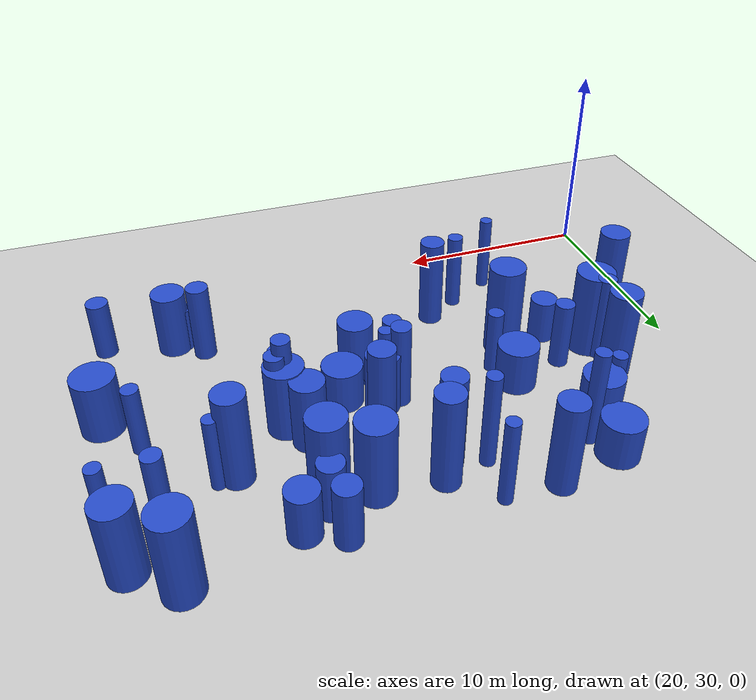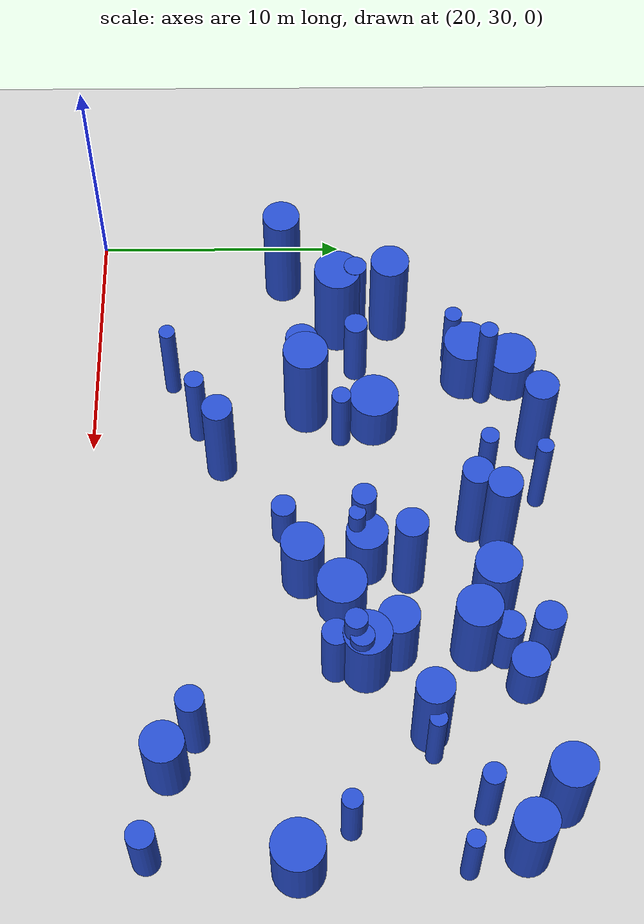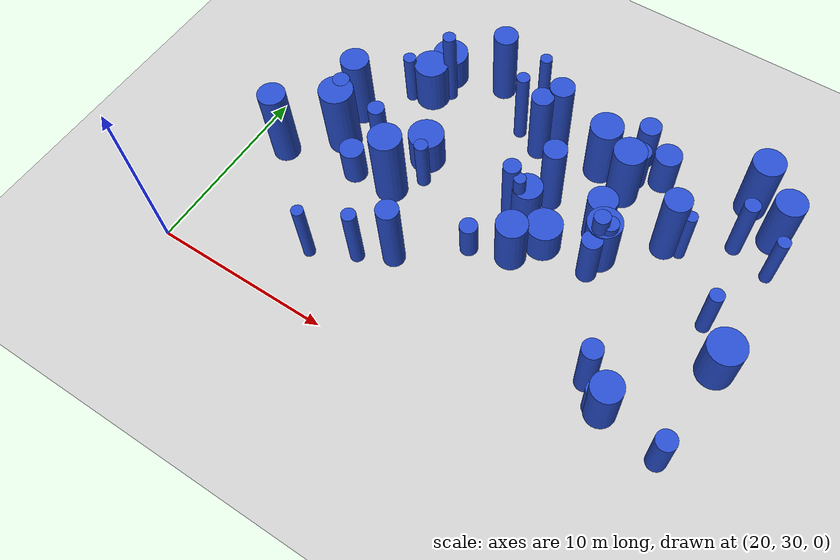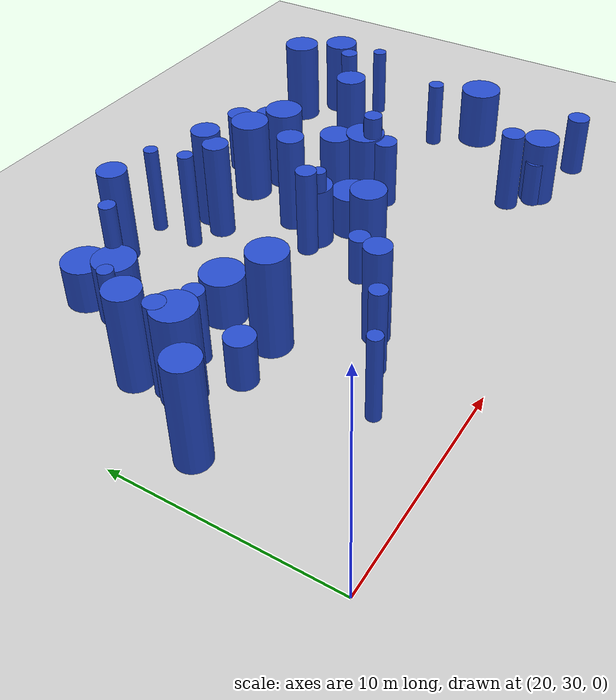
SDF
<sdf version="1.6">
 <world name="default">
  <model name="ground_plane">
   <static>1</static>
   <link name="link">
    <collision name="collision">
     <geometry><plane><normal>0 0 1</normal><size>100 100</size></plane></geometry>
     <surface><friction><ode><mu>100</mu><mu2>50</mu2></ode></friction></surface>
    </collision>
    <visual name="visual">
     <cast_shadows>0</cast_shadows>
     <geometry><plane><normal>0 0 1</normal><size>100 100</size></plane></geometry>
     <material>
      <script><uri>file://media/materials/scripts/gazebo.material</uri><name>Gazebo/Grey</name></script>
     </material>
    </visual>
   </link>
  </model>
  <model name="1">
   <static>0</static>
   <link name="link">
    <inertial>
     <mass>2</mass>
     <inertia><ixx>3.78778</ixx><ixy>0</ixy><ixz>0</ixz><iyy>3.78778</iyy><iyz>0</iyz><izz>0.35692</izz></inertia>
    </inertial>
    <collision name="collision">
     <geometry><cylinder><length>4.65359</length><radius>0.597428</radius></cylinder></geometry>
     <surface><contact><collide_without_contact>1</collide_without_contact></contact></surface>
    </collision>
    <visual name="visual">
     <geometry><cylinder><length>4.65359</length><radius>0.597428</radius></cylinder></geometry>
     <material>
      <script><uri>file://media/materials/scripts/gazebo.material</uri><name>Gazebo/Blue</name></script>
     </material>
    </visual>
    <gravity>0</gravity>
   </link>
   <pose>30.9437 35.2466 2.3268 0 -0 0</pose>
  </model>
  <model name="4">
   <static>0</static>
   <link name="link">
    <inertial>
     <mass>2</mass>
     <inertia>
      <ixx>0.982627</ixx>
      <ixy>0</ixy>
      <ixz>0</ixz>
      <iyy>0.982627</iyy>
      <iyz>0</iyz>
      <izz>0.248096</izz>
     </inertia>
    </inertial>
    <collision name="collision">
     <geometry><cylinder><length>2.26969</length><radius>0.498092</radius></cylinder></geometry>
     <surface><contact><collide_without_contact>1</collide_without_contact></contact></surface>
    </collision>
    <visual name="visual">
     <geometry><cylinder><length>2.26969</length><radius>0.498092</radius></cylinder></geometry>
     <material>
      <script><uri>file://media/materials/scripts/gazebo.material</uri><name>Gazebo/Blue</name></script>
     </material>
    </visual>
    <gravity>0</gravity>
   </link>
   <pose>43.5504 33.5469 1.13484 0 -0 0</pose>
  </model>
  <model name="7">
   <static>0</static>
   <link name="link">
    <inertial>
     <mass>2</mass>
     <inertia><ixx>3.06232</ixx><ixy>0</ixy><ixz>0</ixz><iyy>3.06232</iyy><iyz>0</iyz><izz>0.178257</izz></inertia>
    </inertial>
    <collision name="collision">
     <geometry><cylinder><length>4.22364</length><radius>0.422205</radius></cylinder></geometry>
     <surface><contact><collide_without_contact>1</collide_without_contact></contact></surface>
    </collision>
    <visual name="visual">
     <geometry><cylinder><length>4.22364</length><radius>0.422205</radius></cylinder></geometry>
     <material>
      <script><uri>file://media/materials/scripts/gazebo.material</uri><name>Gazebo/Blue</name></script>
     </material>
    </visual>
    <gravity>0</gravity>
   </link>
   <pose>45.6162 45.1561 2.11182 0 -0 0</pose>
  </model>
  <model name="11">
   <static>0</static>
   <link name="link">
    <inertial>
     <mass>2</mass>
     <inertia><ixx>1.8509</ixx><ixy>0</ixy><ixz>0</ixz><iyy>1.8509</iyy><iyz>0</iyz><izz>0.122377</izz></inertia>
    </inertial>
    <collision name="collision">
     <geometry><cylinder><length>3.27693</length><radius>0.349825</radius></cylinder></geometry>
     <surface><contact><collide_without_contact>1</collide_without_contact></contact></surface>
    </collision>
    <visual name="visual">
     <geometry><cylinder><length>3.27693</length><radius>0.349825</radius></cylinder></geometry>
     <material>
      <script><uri>file://media/materials/scripts/gazebo.material</uri><name>Gazebo/Blue</name></script>
     </material>
    </visual>
    <gravity>0</gravity>
   </link>
   <pose>25.7147 44.6037 1.63846 0 -0 0</pose>
  </model>
  <model name="14">
   <static>0</static>
   <link name="link">
    <inertial>
     <mass>2</mass>
     <inertia><ixx>3.82852</ixx><ixy>0</ixy><ixz>0</ixz><iyy>3.82852</iyy><iyz>0</iyz><izz>0.125875</izz></inertia>
    </inertial>
    <collision name="collision">
     <geometry><cylinder><length>4.75326</length><radius>0.354788</radius></cylinder></geometry>
     <surface><contact><collide_without_contact>1</collide_without_contact></contact></surface>
    </collision>
    <visual name="visual">
     <geometry><cylinder><length>4.75326</length><radius>0.354788</radius></cylinder></geometry>
     <material>
      <script><uri>file://media/materials/scripts/gazebo.material</uri><name>Gazebo/Blue</name></script>
     </material>
    </visual>
    <gravity>0</gravity>
   </link>
   <pose>32.3125 45.6475 2.37663 0 -0 0</pose>
  </model>
  <model name="17">
   <static>0</static>
   <link name="link">
    <inertial>
     <mass>2</mass>
     <inertia><ixx>4.11336</ixx><ixy>0</ixy><ixz>0</ixz><iyy>4.11336</iyy><iyz>0</iyz><izz>0.443854</izz></inertia>
    </inertial>
    <collision name="collision">
     <geometry><cylinder><length>4.83204</length><radius>0.666223</radius></cylinder></geometry>
     <surface><contact><collide_without_contact>1</collide_without_contact></contact></surface>
    </collision>
    <visual name="visual">
     <geometry><cylinder><length>4.83204</length><radius>0.666223</radius></cylinder></geometry>
     <material>
      <script><uri>file://media/materials/scripts/gazebo.material</uri><name>Gazebo/Blue</name></script>
     </material>
    </visual>
    <gravity>0</gravity>
   </link>
   <pose>34.3973 46.1199 2.41602 0 -0 0</pose>
  </model>
  <model name="19">
   <static>0</static>
   <link name="link">
    <inertial>
     <mass>2</mass>
     <inertia><ixx>1.7024</ixx><ixy>0</ixy><ixz>0</ixz><iyy>1.7024</iyy><iyz>0</iyz><izz>0.35835</izz></inertia>
    </inertial>
    <collision name="collision">
     <geometry><cylinder><length>3.02313</length><radius>0.598624</radius></cylinder></geometry>
     <surface><contact><collide_without_contact>1</collide_without_contact></contact></surface>
    </collision>
    <visual name="visual">
     <geometry><cylinder><length>3.02313</length><radius>0.598624</radius></cylinder></geometry>
     <material>
      <script><uri>file://media/materials/scripts/gazebo.material</uri><name>Gazebo/Blue</name></script>
     </material>
    </visual>
    <gravity>0</gravity>
   </link>
   <pose>39.0269 47.6818 1.51157 0 -0 0</pose>
  </model>
  <model name="25">
   <static>0</static>
   <link name="link">
    <inertial>
     <mass>2</mass>
     <inertia><ixx>2.7316</ixx><ixy>0</ixy><ixz>0</ixz><iyy>2.7316</iyy><iyz>0</iyz><izz>0.105322</izz></inertia>
    </inertial>
    <collision name="collision">
     <geometry><cylinder><length>4.00919</length><radius>0.324534</radius></cylinder></geometry>
     <surface><contact><collide_without_contact>1</collide_without_contact></contact></surface>
    </collision>
    <visual name="visual">
     <geometry><cylinder><length>4.00919</length><radius>0.324534</radius></cylinder></geometry>
     <material>
      <script><uri>file://media/materials/scripts/gazebo.material</uri><name>Gazebo/Blue</name></script>
     </material>
    </visual>
    <gravity>0</gravity>
   </link>
   <pose>35.1952 40.577 2.0046 0 -0 0</pose>
  </model>
  <model name="32">
   <static>0</static>
   <link name="link">
    <inertial>
     <mass>2</mass>
     <inertia><ixx>1.31359</ixx><ixy>0</ixy><ixz>0</ixz><iyy>1.31359</iyy><iyz>0</iyz><izz>0.534164</izz></inertia>
    </inertial>
    <collision name="collision">
     <geometry><cylinder><length>2.5058</length><radius>0.730865</radius></cylinder></geometry>
     <surface><contact><collide_without_contact>1</collide_without_contact></contact></surface>
    </collision>
    <visual name="visual">
     <geometry><cylinder><length>2.5058</length><radius>0.730865</radius></cylinder></geometry>
     <material>
      <script><uri>file://media/materials/scripts/gazebo.material</uri><name>Gazebo/Blue</name></script>
     </material>
    </visual>
    <gravity>0</gravity>
   </link>
   <pose>40.5633 46.9048 1.2529 0 -0 0</pose>
  </model>
  <model name="35">
   <static>0</static>
   <link name="link">
    <inertial>
     <mass>2</mass>
     <inertia><ixx>3.99285</ixx><ixy>0</ixy><ixz>0</ixz><iyy>3.99285</iyy><iyz>0</iyz><izz>0.131146</izz></inertia>
    </inertial>
    <collision name="collision">
     <geometry><cylinder><length>4.85424</length><radius>0.36214</radius></cylinder></geometry>
     <surface><contact><collide_without_contact>1</collide_without_contact></contact></surface>
    </collision>
    <visual name="visual">
     <geometry><cylinder><length>4.85424</length><radius>0.36214</radius></cylinder></geometry>
     <material>
      <script><uri>file://media/materials/scripts/gazebo.material</uri><name>Gazebo/Blue</name></script>
     </material>
    </visual>
    <gravity>0</gravity>
   </link>
   <pose>27.5562 45.8459 2.42712 0 -0 0</pose>
  </model>
  <model name="38">
   <static>0</static>
   <link name="link">
    <inertial>
     <mass>2</mass>
     <inertia><ixx>1.64312</ixx><ixy>0</ixy><ixz>0</ixz><iyy>1.64312</iyy><iyz>0</iyz><izz>0.283464</izz></inertia>
    </inertial>
    <collision name="collision">
     <geometry><cylinder><length>3.00139</length><radius>0.532413</radius></cylinder></geometry>
     <surface><contact><collide_without_contact>1</collide_without_contact></contact></surface>
    </collision>
    <visual name="visual">
     <geometry><cylinder><length>3.00139</length><radius>0.532413</radius></cylinder></geometry>
     <material>
      <script><uri>file://media/materials/scripts/gazebo.material</uri><name>Gazebo/Blue</name></script>
     </material>
    </visual>
    <gravity>0</gravity>
   </link>
   <pose>47.3246 32.8651 1.50069 0 -0 0</pose>
  </model>
  <model name="39">
   <static>0</static>
   <link name="link">
    <inertial>
     <mass>2</mass>
     <inertia><ixx>1.87707</ixx><ixy>0</ixy><ixz>0</ixz><iyy>1.87707</iyy><iyz>0</iyz><izz>0.143575</izz></inertia>
    </inertial>
    <collision name="collision">
     <geometry><cylinder><length>3.29115</length><radius>0.378913</radius></cylinder></geometry>
     <surface><contact><collide_without_contact>1</collide_without_contact></contact></surface>
    </collision>
    <visual name="visual">
     <geometry><cylinder><length>3.29115</length><radius>0.378913</radius></cylinder></geometry>
     <material>
      <script><uri>file://media/materials/scripts/gazebo.material</uri><name>Gazebo/Blue</name></script>
     </material>
    </visual>
    <gravity>0</gravity>
   </link>
   <pose>29.5533 40.0496 1.64558 0 -0 0</pose>
  </model>
  <model name="42">
   <static>0</static>
   <link name="link">
    <inertial>
     <mass>2</mass>
     <inertia><ixx>3.1498</ixx><ixy>0</ixy><ixz>0</ixz><iyy>3.1498</iyy><iyz>0</iyz><izz>0.22395</izz></inertia>
    </inertial>
    <collision name="collision">
     <geometry><cylinder><length>4.26931</length><radius>0.473233</radius></cylinder></geometry>
     <surface><contact><collide_without_contact>1</collide_without_contact></contact></surface>
    </collision>
    <visual name="visual">
     <geometry><cylinder><length>4.26931</length><radius>0.473233</radius></cylinder></geometry>
     <material>
      <script><uri>file://media/materials/scripts/gazebo.material</uri><name>Gazebo/Blue</name></script>
     </material>
    </visual>
    <gravity>0</gravity>
   </link>
   <pose>34.5611 40.8487 2.13465 0 -0 0</pose>
  </model>
  <model name="45">
   <static>0</static>
   <link name="link">
    <inertial>
     <mass>2</mass>
     <inertia><ixx>2.26148</ixx><ixy>0</ixy><ixz>0</ixz><iyy>2.26148</iyy><iyz>0</iyz><izz>0.620996</izz></inertia>
    </inertial>
    <collision name="collision">
     <geometry><cylinder><length>3.42138</length><radius>0.788033</radius></cylinder></geometry>
     <surface><contact><collide_without_contact>1</collide_without_contact></contact></surface>
    </collision>
    <visual name="visual">
     <geometry><cylinder><length>3.42138</length><radius>0.788033</radius></cylinder></geometry>
     <material>
      <script><uri>file://media/materials/scripts/gazebo.material</uri><name>Gazebo/Blue</name></script>
     </material>
    </visual>
    <gravity>0</gravity>
   </link>
   <pose>39.1491 42.0776 1.71069 0 -0 0</pose>
  </model>
  <model name="46">
   <static>0</static>
   <link name="link">
    <inertial>
     <mass>2</mass>
     <inertia><ixx>1.08337</ixx><ixy>0</ixy><ixz>0</ixz><iyy>1.08337</iyy><iyz>0</iyz><izz>0.431223</izz></inertia>
    </inertial>
    <collision name="collision">
     <geometry><cylinder><length>2.28179</length><radius>0.656676</radius></cylinder></geometry>
     <surface><contact><collide_without_contact>1</collide_without_contact></contact></surface>
    </collision>
    <visual name="visual">
     <geometry><cylinder><length>2.28179</length><radius>0.656676</radius></cylinder></geometry>
     <material>
      <script><uri>file://media/materials/scripts/gazebo.material</uri><name>Gazebo/Blue</name></script>
     </material>
    </visual>
    <gravity>0</gravity>
   </link>
   <pose>26.1184 38.4737 1.14089 0 -0 0</pose>
  </model>
  <model name="51">
   <static>0</static>
   <link name="link">
    <inertial>
     <mass>2</mass>
     <inertia><ixx>2.12897</ixx><ixy>0</ixy><ixz>0</ixz><iyy>2.12897</iyy><iyz>0</iyz><izz>0.215485</izz></inertia>
    </inertial>
    <collision name="collision">
     <geometry><cylinder><length>3.48244</length><radius>0.464204</radius></cylinder></geometry>
     <surface><contact><collide_without_contact>1</collide_without_contact></contact></surface>
    </collision>
    <visual name="visual">
     <geometry><cylinder><length>3.48244</length><radius>0.464204</radius></cylinder></geometry>
     <material>
      <script><uri>file://media/materials/scripts/gazebo.material</uri><name>Gazebo/Blue</name></script>
     </material>
    </visual>
    <gravity>0</gravity>
   </link>
   <pose>26.2759 40.6636 1.74122 0 -0 0</pose>
  </model>
  <model name="56">
   <static>0</static>
   <link name="link">
    <inertial>
     <mass>2</mass>
     <inertia><ixx>1.44199</ixx><ixy>0</ixy><ixz>0</ixz><iyy>1.44199</iyy><iyz>0</iyz><izz>0.351917</izz></inertia>
    </inertial>
    <collision name="collision">
     <geometry><cylinder><length>2.75612</length><radius>0.593226</radius></cylinder></geometry>
     <surface><contact><collide_without_contact>1</collide_without_contact></contact></surface>
    </collision>
    <visual name="visual">
     <geometry><cylinder><length>2.75612</length><radius>0.593226</radius></cylinder></geometry>
     <material>
      <script><uri>file://media/materials/scripts/gazebo.material</uri><name>Gazebo/Blue</name></script>
     </material>
    </visual>
    <gravity>0</gravity>
   </link>
   <pose>39.2574 46.1786 1.37806 0 -0 0</pose>
  </model>
  <model name="62">
   <static>0</static>
   <link name="link">
    <inertial>
     <mass>2</mass>
     <inertia><ixx>1.99738</ixx><ixy>0</ixy><ixz>0</ixz><iyy>1.99738</iyy><iyz>0</iyz><izz>0.149019</izz></inertia>
    </inertial>
    <collision name="collision">
     <geometry><cylinder><length>3.39665</length><radius>0.38603</radius></cylinder></geometry>
     <surface><contact><collide_without_contact>1</collide_without_contact></contact></surface>
    </collision>
    <visual name="visual">
     <geometry><cylinder><length>3.39665</length><radius>0.38603</radius></cylinder></geometry>
     <material>
      <script><uri>file://media/materials/scripts/gazebo.material</uri><name>Gazebo/Blue</name></script>
     </material>
    </visual>
    <gravity>0</gravity>
   </link>
   <pose>46.2021 40.252 1.69832 0 -0 0</pose>
  </model>
  <model name="64">
   <static>0</static>
   <link name="link">
    <inertial>
     <mass>2</mass>
     <inertia><ixx>3.05171</ixx><ixy>0</ixy><ixz>0</ixz><iyy>3.05171</iyy><iyz>0</iyz><izz>0.774554</izz></inertia>
    </inertial>
    <collision name="collision">
     <geometry><cylinder><length>3.99833</length><radius>0.880087</radius></cylinder></geometry>
     <surface><contact><collide_without_contact>1</collide_without_contact></contact></surface>
    </collision>
    <visual name="visual">
     <geometry><cylinder><length>3.99833</length><radius>0.880087</radius></cylinder></geometry>
     <material>
      <script><uri>file://media/materials/scripts/gazebo.material</uri><name>Gazebo/Blue</name></script>
     </material>
    </visual>
    <gravity>0</gravity>
   </link>
   <pose>39.071 44.9999 1.99916 0 -0 0</pose>
  </model>
  <model name="67">
   <static>0</static>
   <link name="link">
    <inertial>
     <mass>2</mass>
     <inertia><ixx>3.78893</ixx><ixy>0</ixy><ixz>0</ixz><iyy>3.78893</iyy><iyz>0</iyz><izz>0.594463</izz></inertia>
    </inertial>
    <collision name="collision">
     <geometry><cylinder><length>4.57713</length><radius>0.771014</radius></cylinder></geometry>
     <surface><contact><collide_without_contact>1</collide_without_contact></contact></surface>
    </collision>
    <visual name="visual">
     <geometry><cylinder><length>4.57713</length><radius>0.771014</radius></cylinder></geometry>
     <material>
      <script><uri>file://media/materials/scripts/gazebo.material</uri><name>Gazebo/Blue</name></script>
     </material>
    </visual>
    <gravity>0</gravity>
   </link>
   <pose>24.0154 42.051 2.28857 0 -0 0</pose>
  </model>
  <model name="69">
   <static>0</static>
   <link name="link">
    <inertial>
     <mass>2</mass>
     <inertia><ixx>4.29036</ixx><ixy>0</ixy><ixz>0</ixz><iyy>4.29036</iyy><iyz>0</iyz><izz>0.556457</izz></inertia>
    </inertial>
    <collision name="collision">
     <geometry><cylinder><length>4.9064</length><radius>0.74596</radius></cylinder></geometry>
     <surface><contact><collide_without_contact>1</collide_without_contact></contact></surface>
    </collision>
    <visual name="visual">
     <geometry><cylinder><length>4.9064</length><radius>0.74596</radius></cylinder></geometry>
     <material>
      <script><uri>file://media/materials/scripts/gazebo.material</uri><name>Gazebo/Blue</name></script>
     </material>
    </visual>
    <gravity>0</gravity>
   </link>
   <pose>21.9801 37.6707 2.4532 0 -0 0</pose>
  </model>
  <model name="71">
   <static>0</static>
   <link name="link">
    <inertial>
     <mass>2</mass>
     <inertia><ixx>3.39926</ixx><ixy>0</ixy><ixz>0</ixz><iyy>3.39926</iyy><iyz>0</iyz><izz>0.20815</izz></inertia>
    </inertial>
    <collision name="collision">
     <geometry><cylinder><length>4.44647</length><radius>0.456234</radius></cylinder></geometry>
     <surface><contact><collide_without_contact>1</collide_without_contact></contact></surface>
    </collision>
    <visual name="visual">
     <geometry><cylinder><length>4.44647</length><radius>0.456234</radius></cylinder></geometry>
     <material>
      <script><uri>file://media/materials/scripts/gazebo.material</uri><name>Gazebo/Blue</name></script>
     </material>
    </visual>
    <gravity>0</gravity>
   </link>
   <pose>24.1535 40.6533 2.22323 0 -0 0</pose>
  </model>
  <model name="74">
   <static>0</static>
   <link name="link">
    <inertial>
     <mass>2</mass>
     <inertia><ixx>2.79138</ixx><ixy>0</ixy><ixz>0</ixz><iyy>2.79138</iyy><iyz>0</iyz><izz>0.102118</izz></inertia>
    </inertial>
    <collision name="collision">
     <geometry><cylinder><length>4.05487</length><radius>0.319558</radius></cylinder></geometry>
     <surface><contact><collide_without_contact>1</collide_without_contact></contact></surface>
    </collision>
    <visual name="visual">
     <geometry><cylinder><length>4.05487</length><radius>0.319558</radius></cylinder></geometry>
     <material>
      <script><uri>file://media/materials/scripts/gazebo.material</uri><name>Gazebo/Blue</name></script>
     </material>
    </visual>
    <gravity>0</gravity>
   </link>
   <pose>27.024 33.1538 2.02743 0 -0 0</pose>
  </model>
  <model name="80">
   <static>0</static>
   <link name="link">
    <inertial>
     <mass>2</mass>
     <inertia><ixx>3.9002</ixx><ixy>0</ixy><ixz>0</ixz><iyy>3.9002</iyy><iyz>0</iyz><izz>0.386485</izz></inertia>
    </inertial>
    <collision name="collision">
     <geometry><cylinder><length>4.71611</length><radius>0.621679</radius></cylinder></geometry>
     <surface><contact><collide_without_contact>1</collide_without_contact></contact></surface>
    </collision>
    <visual name="visual">
     <geometry><cylinder><length>4.71611</length><radius>0.621679</radius></cylinder></geometry>
     <material>
      <script><uri>file://media/materials/scripts/gazebo.material</uri><name>Gazebo/Blue</name></script>
     </material>
    </visual>
    <gravity>0</gravity>
   </link>
   <pose>36.0171 42.5943 2.35806 0 -0 0</pose>
  </model>
  <model name="82">
   <static>0</static>
   <link name="link">
    <inertial>
     <mass>2</mass>
     <inertia><ixx>3.87551</ixx><ixy>0</ixy><ixz>0</ixz><iyy>3.87551</iyy><iyz>0</iyz><izz>0.350834</izz></inertia>
    </inertial>
    <collision name="collision">
     <geometry><cylinder><length>4.71175</length><radius>0.592312</radius></cylinder></geometry>
     <surface><contact><collide_without_contact>1</collide_without_contact></contact></surface>
    </collision>
    <visual name="visual">
     <geometry><cylinder><length>4.71175</length><radius>0.592312</radius></cylinder></geometry>
     <material>
      <script><uri>file://media/materials/scripts/gazebo.material</uri><name>Gazebo/Blue</name></script>
     </material>
    </visual>
    <gravity>0</gravity>
   </link>
   <pose>33.8019 45.1243 2.35587 0 -0 0</pose>
  </model>
  <model name="84">
   <static>0</static>
   <link name="link">
    <inertial>
     <mass>2</mass>
     <inertia><ixx>1.19616</ixx><ixy>0</ixy><ixz>0</ixz><iyy>1.19616</iyy><iyz>0</iyz><izz>0.933302</izz></inertia>
    </inertial>
    <collision name="collision">
     <geometry><cylinder><length>2.09214</length><radius>0.966076</radius></cylinder></geometry>
     <surface><contact><collide_without_contact>1</collide_without_contact></contact></surface>
    </collision>
    <visual name="visual">
     <geometry><cylinder><length>2.09214</length><radius>0.966076</radius></cylinder></geometry>
     <material>
      <script><uri>file://media/materials/scripts/gazebo.material</uri><name>Gazebo/Blue</name></script>
     </material>
    </visual>
    <gravity>0</gravity>
   </link>
   <pose>37.0807 40.0005 1.04607 0 -0 0</pose>
  </model>
  <model name="86">
   <static>0</static>
   <link name="link">
    <inertial>
     <mass>2</mass>
     <inertia><ixx>3.85061</ixx><ixy>0</ixy><ixz>0</ixz><iyy>3.85061</iyy><iyz>0</iyz><izz>0.518978</izz></inertia>
    </inertial>
    <collision name="collision">
     <geometry><cylinder><length>4.64185</length><radius>0.720401</radius></cylinder></geometry>
     <surface><contact><collide_without_contact>1</collide_without_contact></contact></surface>
    </collision>
    <visual name="visual">
     <geometry><cylinder><length>4.64185</length><radius>0.720401</radius></cylinder></geometry>
     <material>
      <script><uri>file://media/materials/scripts/gazebo.material</uri><name>Gazebo/Blue</name></script>
     </material>
    </visual>
    <gravity>0</gravity>
   </link>
   <pose>42.5024 43.2263 2.32092 0 -0 0</pose>
  </model>
  <model name="87">
   <static>0</static>
   <link name="link">
    <inertial>
     <mass>2</mass>
     <inertia><ixx>3.09626</ixx><ixy>0</ixy><ixz>0</ixz><iyy>3.09626</iyy><iyz>0</iyz><izz>0.107735</izz></inertia>
    </inertial>
    <collision name="collision">
     <geometry><cylinder><length>4.27251</length><radius>0.32823</radius></cylinder></geometry>
     <surface><contact><collide_without_contact>1</collide_without_contact></contact></surface>
    </collision>
    <visual name="visual">
     <geometry><cylinder><length>4.27251</length><radius>0.32823</radius></cylinder></geometry>
     <material>
      <script><uri>file://media/materials/scripts/gazebo.material</uri><name>Gazebo/Blue</name></script>
     </material>
    </visual>
    <gravity>0</gravity>
   </link>
   <pose>32.4923 47.7909 2.13626 0 -0 0</pose>
  </model>
  <model name="89">
   <static>0</static>
   <link name="link">
    <inertial>
     <mass>2</mass>
     <inertia><ixx>2.83176</ixx><ixy>0</ixy><ixz>0</ixz><iyy>2.83176</iyy><iyz>0</iyz><izz>0.149114</izz></inertia>
    </inertial>
    <collision name="collision">
     <geometry><cylinder><length>4.06733</length><radius>0.386152</radius></cylinder></geometry>
     <surface><contact><collide_without_contact>1</collide_without_contact></contact></surface>
    </collision>
    <visual name="visual">
     <geometry><cylinder><length>4.06733</length><radius>0.386152</radius></cylinder></geometry>
     <material>
      <script><uri>file://media/materials/scripts/gazebo.material</uri><name>Gazebo/Blue</name></script>
     </material>
    </visual>
    <gravity>0</gravity>
   </link>
   <pose>29.2793 34.287 2.03367 0 -0 0</pose>
  </model>
  <model name="95">
   <static>0</static>
   <link name="link">
    <inertial>
     <mass>2</mass>
     <inertia>
      <ixx>0.985771</ixx>
      <ixy>0</ixy>
      <ixz>0</ixz>
      <iyy>0.985771</iyy>
      <iyz>0</iyz>
      <izz>0.233893</izz>
     </inertia>
    </inertial>
    <collision name="collision">
     <geometry><cylinder><length>2.28319</length><radius>0.483625</radius></cylinder></geometry>
     <surface><contact><collide_without_contact>1</collide_without_contact></contact></surface>
    </collision>
    <visual name="visual">
     <geometry><cylinder><length>2.28319</length><radius>0.483625</radius></cylinder></geometry>
     <material>
      <script><uri>file://media/materials/scripts/gazebo.material</uri><name>Gazebo/Blue</name></script>
     </material>
    </visual>
    <gravity>0</gravity>
   </link>
   <pose>33.9366 37.7681 1.14159 0 -0 0</pose>
  </model>
  <model name="106">
   <static>0</static>
   <link name="link">
    <inertial>
     <mass>2</mass>
     <inertia><ixx>2.19954</ixx><ixy>0</ixy><ixz>0</ixz><iyy>2.19954</iyy><iyz>0</iyz><izz>0.11993</izz></inertia>
    </inertial>
    <collision name="collision">
     <geometry><cylinder><length>3.58294</length><radius>0.346309</radius></cylinder></geometry>
     <surface><contact><collide_without_contact>1</collide_without_contact></contact></surface>
    </collision>
    <visual name="visual">
     <geometry><cylinder><length>3.58294</length><radius>0.346309</radius></cylinder></geometry>
     <material>
      <script><uri>file://media/materials/scripts/gazebo.material</uri><name>Gazebo/Blue</name></script>
     </material>
    </visual>
    <gravity>0</gravity>
   </link>
   <pose>47.7338 44.4726 1.79147 0 -0 0</pose>
  </model>
  <model name="110">
   <static>0</static>
   <link name="link">
    <inertial>
     <mass>2</mass>
     <inertia><ixx>2.75029</ixx><ixy>0</ixy><ixz>0</ixz><iyy>2.75029</iyy><iyz>0</iyz><izz>0.287407</izz></inertia>
    </inertial>
    <collision name="collision">
     <geometry><cylinder><length>3.95468</length><radius>0.536104</radius></cylinder></geometry>
     <surface><contact><collide_without_contact>1</collide_without_contact></contact></surface>
    </collision>
    <visual name="visual">
     <geometry><cylinder><length>3.95468</length><radius>0.536104</radius></cylinder></geometry>
     <material>
      <script><uri>file://media/materials/scripts/gazebo.material</uri><name>Gazebo/Blue</name></script>
     </material>
    </visual>
    <gravity>0</gravity>
   </link>
   <pose>42.6495 34.504 1.97734 0 -0 0</pose>
  </model>
  <model name="114">
   <static>0</static>
   <link name="link">
    <inertial>
     <mass>2</mass>
     <inertia><ixx>2.29436</ixx><ixy>0</ixy><ixz>0</ixz><iyy>2.29436</iyy><iyz>0</iyz><izz>0.108501</izz></inertia>
    </inertial>
    <collision name="collision">
     <geometry><cylinder><length>3.66615</length><radius>0.329394</radius></cylinder></geometry>
     <surface><contact><collide_without_contact>1</collide_without_contact></contact></surface>
    </collision>
    <visual name="visual">
     <geometry><cylinder><length>3.66615</length><radius>0.329394</radius></cylinder></geometry>
     <material>
      <script><uri>file://media/materials/scripts/gazebo.material</uri><name>Gazebo/Blue</name></script>
     </material>
    </visual>
    <gravity>0</gravity>
   </link>
   <pose>43.338 43.3503 1.83308 0 -0 0</pose>
  </model>
  <model name="128">
   <static>0</static>
   <link name="link">
    <inertial>
     <mass>2</mass>
     <inertia><ixx>3.56373</ixx><ixy>0</ixy><ixz>0</ixz><iyy>3.56373</iyy><iyz>0</iyz><izz>0.183806</izz></inertia>
    </inertial>
    <collision name="collision">
     <geometry><cylinder><length>4.56409</length><radius>0.428726</radius></cylinder></geometry>
     <surface><contact><collide_without_contact>1</collide_without_contact></contact></surface>
    </collision>
    <visual name="visual">
     <geometry><cylinder><length>4.56409</length><radius>0.428726</radius></cylinder></geometry>
     <material>
      <script><uri>file://media/materials/scripts/gazebo.material</uri><name>Gazebo/Blue</name></script>
     </material>
    </visual>
    <gravity>0</gravity>
   </link>
   <pose>39.8452 40.467 2.28205 0 -0 0</pose>
  </model>
  <model name="130">
   <static>0</static>
   <link name="link">
    <inertial>
     <mass>2</mass>
     <inertia><ixx>2.81294</ixx><ixy>0</ixy><ixz>0</ixz><iyy>2.81294</iyy><iyz>0</iyz><izz>0.682512</izz></inertia>
    </inertial>
    <collision name="collision">
     <geometry><cylinder><length>3.85099</length><radius>0.826143</radius></cylinder></geometry>
     <surface><contact><collide_without_contact>1</collide_without_contact></contact></surface>
    </collision>
    <visual name="visual">
     <geometry><cylinder><length>3.85099</length><radius>0.826143</radius></cylinder></geometry>
     <material>
      <script><uri>file://media/materials/scripts/gazebo.material</uri><name>Gazebo/Blue</name></script>
     </material>
    </visual>
    <gravity>0</gravity>
   </link>
   <pose>47.1678 46.577 1.92549 0 -0 0</pose>
  </model>
  <model name="141">
   <static>0</static>
   <link name="link">
    <inertial>
     <mass>2</mass>
     <inertia><ixx>3.32043</ixx><ixy>0</ixy><ixz>0</ixz><iyy>3.32043</iyy><iyz>0</iyz><izz>0.743493</izz></inertia>
    </inertial>
    <collision name="collision">
     <geometry><cylinder><length>4.2062</length><radius>0.86226</radius></cylinder></geometry>
     <surface><contact><collide_without_contact>1</collide_without_contact></contact></surface>
    </collision>
    <visual name="visual">
     <geometry><cylinder><length>4.2062</length><radius>0.86226</radius></cylinder></geometry>
     <material>
      <script><uri>file://media/materials/scripts/gazebo.material</uri><name>Gazebo/Blue</name></script>
     </material>
    </visual>
    <gravity>0</gravity>
   </link>
   <pose>45.3041 47.9549 2.1031 0 -0 0</pose>
  </model>
  <model name="152">
   <static>0</static>
   <link name="link">
    <inertial>
     <mass>2</mass>
     <inertia><ixx>1.20059</ixx><ixy>0</ixy><ixz>0</ixz><iyy>1.20059</iyy><iyz>0</iyz><izz>0.971857</izz></inertia>
    </inertial>
    <collision name="collision">
     <geometry><cylinder><length>2.07074</length><radius>0.985828</radius></cylinder></geometry>
     <surface><contact><collide_without_contact>1</collide_without_contact></contact></surface>
    </collision>
    <visual name="visual">
     <geometry><cylinder><length>2.07074</length><radius>0.985828</radius></cylinder></geometry>
     <material>
      <script><uri>file://media/materials/scripts/gazebo.material</uri><name>Gazebo/Blue</name></script>
     </material>
    </visual>
    <gravity>0</gravity>
   </link>
   <pose>26.8155 47.0067 1.03537 0 -0 0</pose>
  </model>
  <model name="155">
   <static>0</static>
   <link name="link">
    <inertial>
     <mass>2</mass>
     <inertia><ixx>2.14576</ixx><ixy>0</ixy><ixz>0</ixz><iyy>2.14576</iyy><iyz>0</iyz><izz>0.670483</izz></inertia>
    </inertial>
    <collision name="collision">
     <geometry><cylinder><length>3.29592</length><radius>0.81883</radius></cylinder></geometry>
     <surface><contact><collide_without_contact>1</collide_without_contact></contact></surface>
    </collision>
    <visual name="visual">
     <geometry><cylinder><length>3.29592</length><radius>0.81883</radius></cylinder></geometry>
     <material>
      <script><uri>file://media/materials/scripts/gazebo.material</uri><name>Gazebo/Blue</name></script>
     </material>
    </visual>
    <gravity>0</gravity>
   </link>
   <pose>44.0083 33.5307 1.64796 0 -0 0</pose>
  </model>
  <model name="160">
   <static>0</static>
   <link name="link">
    <inertial>
     <mass>2</mass>
     <inertia><ixx>2.44797</ixx><ixy>0</ixy><ixz>0</ixz><iyy>2.44797</iyy><iyz>0</iyz><izz>0.847195</izz></inertia>
    </inertial>
    <collision name="collision">
     <geometry><cylinder><length>3.48514</length><radius>0.920432</radius></cylinder></geometry>
     <surface><contact><collide_without_contact>1</collide_without_contact></contact></surface>
    </collision>
    <visual name="visual">
     <geometry><cylinder><length>3.48514</length><radius>0.920432</radius></cylinder></geometry>
     <material>
      <script><uri>file://media/materials/scripts/gazebo.material</uri><name>Gazebo/Blue</name></script>
     </material>
    </visual>
    <gravity>0</gravity>
   </link>
   <pose>39.8909 40.9021 1.74257 0 -0 0</pose>
  </model>
  <model name="163">
   <static>0</static>
   <link name="link">
    <inertial>
     <mass>2</mass>
     <inertia><ixx>4.16915</ixx><ixy>0</ixy><ixz>0</ixz><iyy>4.16915</iyy><iyz>0</iyz><izz>0.775676</izz></inertia>
    </inertial>
    <collision name="collision">
     <geometry><cylinder><length>4.76318</length><radius>0.880725</radius></cylinder></geometry>
     <surface><contact><collide_without_contact>1</collide_without_contact></contact></surface>
    </collision>
    <visual name="visual">
     <geometry><cylinder><length>4.76318</length><radius>0.880725</radius></cylinder></geometry>
     <material>
      <script><uri>file://media/materials/scripts/gazebo.material</uri><name>Gazebo/Blue</name></script>
     </material>
    </visual>
    <gravity>0</gravity>
   </link>
   <pose>28.4074 38.6486 2.38159 0 -0 0</pose>
  </model>
  <model name="164">
   <static>0</static>
   <link name="link">
    <inertial>
     <mass>2</mass>
     <inertia><ixx>1.85473</ixx><ixy>0</ixy><ixz>0</ixz><iyy>1.85473</iyy><iyz>0</iyz><izz>0.892902</izz></inertia>
    </inertial>
    <collision name="collision">
     <geometry><cylinder><length>2.90684</length><radius>0.944935</radius></cylinder></geometry>
     <surface><contact><collide_without_contact>1</collide_without_contact></contact></surface>
    </collision>
    <visual name="visual">
     <geometry><cylinder><length>2.90684</length><radius>0.944935</radius></cylinder></geometry>
     <material>
      <script><uri>file://media/materials/scripts/gazebo.material</uri><name>Gazebo/Blue</name></script>
     </material>
    </visual>
    <gravity>0</gravity>
   </link>
   <pose>26.7698 45.1486 1.45342 0 -0 0</pose>
  </model>
  <model name="167">
   <static>0</static>
   <link name="link">
    <inertial>
     <mass>2</mass>
     <inertia><ixx>1.34492</ixx><ixy>0</ixy><ixz>0</ixz><iyy>1.34492</iyy><iyz>0</iyz><izz>0.970128</izz></inertia>
    </inertial>
    <collision name="collision">
     <geometry><cylinder><length>2.27138</length><radius>0.984951</radius></cylinder></geometry>
     <surface><contact><collide_without_contact>1</collide_without_contact></contact></surface>
    </collision>
    <visual name="visual">
     <geometry><cylinder><length>2.27138</length><radius>0.984951</radius></cylinder></geometry>
     <material>
      <script><uri>file://media/materials/scripts/gazebo.material</uri><name>Gazebo/Blue</name></script>
     </material>
    </visual>
    <gravity>0</gravity>
   </link>
   <pose>28.9333 41.3694 1.13569 0 -0 0</pose>
  </model>
  <model name="188">
   <static>0</static>
   <link name="link">
    <inertial>
     <mass>2</mass>
     <inertia><ixx>3.04092</ixx><ixy>0</ixy><ixz>0</ixz><iyy>3.04092</iyy><iyz>0</iyz><izz>0.786002</izz></inertia>
    </inertial>
    <collision name="collision">
     <geometry><cylinder><length>3.98592</length><radius>0.886567</radius></cylinder></geometry>
     <surface><contact><collide_without_contact>1</collide_without_contact></contact></surface>
    </collision>
    <visual name="visual">
     <geometry><cylinder><length>3.98592</length><radius>0.886567</radius></cylinder></geometry>
     <material>
      <script><uri>file://media/materials/scripts/gazebo.material</uri><name>Gazebo/Blue</name></script>
     </material>
    </visual>
    <gravity>0</gravity>
   </link>
   <pose>37.3091 45.7782 1.99296 0 -0 0</pose>
  </model>
  <model name="189">
   <static>0</static>
   <link name="link">
    <inertial>
     <mass>2</mass>
     <inertia><ixx>2.71953</ixx><ixy>0</ixy><ixz>0</ixz><iyy>2.71953</iyy><iyz>0</iyz><izz>0.207124</izz></inertia>
    </inertial>
    <collision name="collision">
     <geometry><cylinder><length>3.96179</length><radius>0.455108</radius></cylinder></geometry>
     <surface><contact><collide_without_contact>1</collide_without_contact></contact></surface>
    </collision>
    <visual name="visual">
     <geometry><cylinder><length>3.96179</length><radius>0.455108</radius></cylinder></geometry>
     <material>
      <script><uri>file://media/materials/scripts/gazebo.material</uri><name>Gazebo/Blue</name></script>
     </material>
    </visual>
    <gravity>0</gravity>
   </link>
   <pose>40.2209 40.6926 1.9809 0 -0 0</pose>
  </model>
  <model name="198">
   <static>0</static>
   <link name="link">
    <inertial>
     <mass>2</mass>
     <inertia><ixx>3.71387</ixx><ixy>0</ixy><ixz>0</ixz><iyy>3.71387</iyy><iyz>0</iyz><izz>0.447245</izz></inertia>
    </inertial>
    <collision name="collision">
     <geometry><cylinder><length>4.57619</length><radius>0.668764</radius></cylinder></geometry>
     <surface><contact><collide_without_contact>1</collide_without_contact></contact></surface>
    </collision>
    <visual name="visual">
     <geometry><cylinder><length>4.57619</length><radius>0.668764</radius></cylinder></geometry>
     <material>
      <script><uri>file://media/materials/scripts/gazebo.material</uri><name>Gazebo/Blue</name></script>
     </material>
    </visual>
    <gravity>0</gravity>
   </link>
   <pose>29.9535 47.7903 2.28809 0 -0 0</pose>
  </model>
  <model name="206">
   <static>0</static>
   <link name="link">
    <inertial>
     <mass>2</mass>
     <inertia><ixx>3.72014</ixx><ixy>0</ixy><ixz>0</ixz><iyy>3.72014</iyy><iyz>0</iyz><izz>0.869376</izz></inertia>
    </inertial>
    <collision name="collision">
     <geometry><cylinder><length>4.4399</length><radius>0.932403</radius></cylinder></geometry>
     <surface><contact><collide_without_contact>1</collide_without_contact></contact></surface>
    </collision>
    <visual name="visual">
     <geometry><cylinder><length>4.4399</length><radius>0.932403</radius></cylinder></geometry>
     <material>
      <script><uri>file://media/materials/scripts/gazebo.material</uri><name>Gazebo/Blue</name></script>
     </material>
    </visual>
    <gravity>0</gravity>
   </link>
   <pose>24.3304 39.9397 2.21995 0 -0 0</pose>
  </model>
  <model name="212">
   <static>0</static>
   <link name="link">
    <inertial>
     <mass>2</mass>
     <inertia><ixx>2.06459</ixx><ixy>0</ixy><ixz>0</ixz><iyy>2.06459</iyy><iyz>0</iyz><izz>0.294877</izz></inertia>
    </inertial>
    <collision name="collision">
     <geometry><cylinder><length>3.3916</length><radius>0.543026</radius></cylinder></geometry>
     <surface><contact><collide_without_contact>1</collide_without_contact></contact></surface>
    </collision>
    <visual name="visual">
     <geometry><cylinder><length>3.3916</length><radius>0.543026</radius></cylinder></geometry>
     <material>
      <script><uri>file://media/materials/scripts/gazebo.material</uri><name>Gazebo/Blue</name></script>
     </material>
    </visual>
    <gravity>0</gravity>
   </link>
   <pose>39.8224 39.7475 1.6958 0 -0 0</pose>
  </model>
  <model name="217">
   <static>0</static>
   <link name="link">
    <inertial>
     <mass>2</mass>
     <inertia><ixx>1.95959</ixx><ixy>0</ixy><ixz>0</ixz><iyy>1.95959</iyy><iyz>0</iyz><izz>0.990293</izz></inertia>
    </inertial>
    <collision name="collision">
     <geometry><cylinder><length>2.96423</length><radius>0.995135</radius></cylinder></geometry>
     <surface><contact><collide_without_contact>1</collide_without_contact></contact></surface>
    </collision>
    <visual name="visual">
     <geometry><cylinder><length>2.96423</length><radius>0.995135</radius></cylinder></geometry>
     <material>
      <script><uri>file://media/materials/scripts/gazebo.material</uri><name>Gazebo/Blue</name></script>
     </material>
    </visual>
    <gravity>0</gravity>
   </link>
   <pose>47.697 38.3504 1.48211 0 -0 0</pose>
  </model>
  <model name="224">
   <static>0</static>
   <link name="link">
    <inertial>
     <mass>2</mass>
     <inertia><ixx>2.1143</ixx><ixy>0</ixy><ixz>0</ixz><iyy>2.1143</iyy><iyz>0</iyz><izz>0.699634</izz></inertia>
    </inertial>
    <collision name="collision">
     <geometry><cylinder><length>3.25375</length><radius>0.836441</radius></cylinder></geometry>
     <surface><contact><collide_without_contact>1</collide_without_contact></contact></surface>
    </collision>
    <visual name="visual">
     <geometry><cylinder><length>3.25375</length><radius>0.836441</radius></cylinder></geometry>
     <material>
      <script><uri>file://media/materials/scripts/gazebo.material</uri><name>Gazebo/Blue</name></script>
     </material>
    </visual>
    <gravity>0</gravity>
   </link>
   <pose>36.009 38.5127 1.62688 0 -0 0</pose>
  </model>
  <model name="236">
   <static>0</static>
   <link name="link">
    <inertial>
     <mass>2</mass>
     <inertia><ixx>1.83993</ixx><ixy>0</ixy><ixz>0</ixz><iyy>1.83993</iyy><iyz>0</iyz><izz>0.652607</izz></inertia>
    </inertial>
    <collision name="collision">
     <geometry><cylinder><length>3.0136</length><radius>0.807841</radius></cylinder></geometry>
     <surface><contact><collide_without_contact>1</collide_without_contact></contact></surface>
    </collision>
    <visual name="visual">
     <geometry><cylinder><length>3.0136</length><radius>0.807841</radius></cylinder></geometry>
     <material>
      <script><uri>file://media/materials/scripts/gazebo.material</uri><name>Gazebo/Blue</name></script>
     </material>
    </visual>
    <gravity>0</gravity>
   </link>
   <pose>35.459 40.965 1.5068 0 -0 0</pose>
  </model>
 </world>
</sdf>
